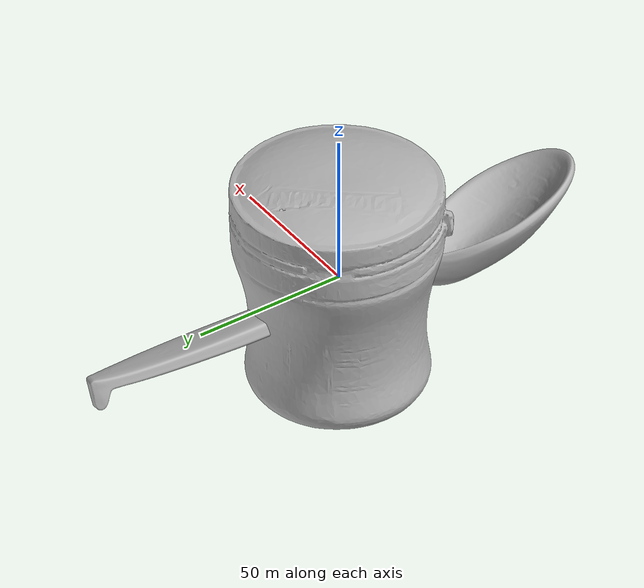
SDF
<sdf version="1.4">
 <world name="default">
  <light name="light1" type="point">
   <pose>0 0 1 0 0 0</pose>
   <diffuse>3 3 3 1</diffuse>
   <specular>3 3 3 1</specular>
  </light>
  <light name="light2" type="point">
   <pose>0 0.5 2 0 0 0</pose>
   <diffuse>1 1 1 1</diffuse>
   <specular>1 1 1 1</specular>
  </light>
  <light name="light3" type="point">
   <pose>0 0.5 2 0 0 0</pose>
   <diffuse>3 3 3 1</diffuse>
   <specular>3 3 3 1</specular>
  </light>
  <scene><ambient>0.7 0.7 0.7</ambient></scene>
  <model name="bottle1">
   <link name="link_bottle1">
    <collision name="default">
     <geometry>
      <mesh><uri>model://green_arrow/collision_meshes/collision.obj</uri><scale>1.0 1.0 1.0</scale></mesh>
     </geometry>
     <surface>
      <friction><ode><mu>0.5</mu><mu2>0.5</mu2></ode></friction>
      <contact><ode><max_vel>0</max_vel><min_depth>0.0001</min_depth><kp>1e8</kp></ode></contact>
     </surface>
    </collision>
    <visual name="default">
     <geometry>
      <mesh><uri>model://green_arrow/visual_meshes/visual.dae</uri><scale>1.0 1.0 1.0</scale></mesh>
     </geometry>
    </visual>
    <inertial>
     <mass>0.31872013211250305</mass>
     <pose>0.0005358478520065546 -0.0008270691032521427 0.002210969803854823 -0.06332250060756175 0.012985582117300467 0.6741007804522225</pose>
     <inertia>
      <ixx>0.00023120124</ixx>
      <iyy>0.000230851</iyy>
      <izz>0.0001492862</izz>
      <ixy>0</ixy>
      <ixz>0</ixz>
      <iyz>0</iyz>
     </inertia>
    </inertial>
   </link>
   <pose>-0.021411504596471786 0.3023797273635864 0.03896164521574974 0.04528488724772682 0.024256552680628415 -2.9375275718943157</pose>
  </model>
  <model name="bottle2">
   <link name="link_bottle2">
    <collision name="default">
     <geometry>
      <mesh><uri>model://pigeon/collision_meshes/collision.obj</uri><scale>1.0 1.0 1.0</scale></mesh>
     </geometry>
     <surface>
      <friction><ode><mu>0.5</mu><mu2>0.5</mu2></ode></friction>
      <contact><ode><max_vel>0</max_vel><min_depth>0.0001</min_depth><kp>1e8</kp></ode></contact>
     </surface>
    </collision>
    <visual name="default">
     <geometry><mesh><uri>model://pigeon/visual_meshes/visual.dae</uri><scale>1.0 1.0 1.0</scale></mesh></geometry>
    </visual>
    <inertial>
     <mass>0.5279804468154907</mass>
     <pose>-9.675472392700613e-05 -0.0001927677367348224 -0.01593620702624321 -0.011704407495178063 -0.0012978199512556723 -0.04198835484465517</pose>
     <inertia>
      <ixx>0.0013198232</ixx>
      <iyy>0.0014089285</iyy>
      <izz>0.000271492</izz>
      <ixy>0</ixy>
      <ixz>0</ixz>
      <iyz>0</iyz>
     </inertia>
    </inertial>
   </link>
   <pose>-0.06442016363143921 0.026909295469522476 0.09864485263824463 2.3814318162002528e-05 3.209315452502953e-06 2.562845028619898</pose>
  </model>
  <model name="silverware1">
   <link name="link_silverware1">
    <collision name="default">
     <geometry>
      <mesh><uri>model://doraemon_spoon/collision_meshes/collision.obj</uri><scale>1.0 1.0 1.0</scale></mesh>
     </geometry>
     <surface>
      <friction><ode><mu>0.5</mu><mu2>0.5</mu2></ode></friction>
      <contact><ode><max_vel>0</max_vel><min_depth>0.0001</min_depth><kp>1e8</kp></ode></contact>
     </surface>
    </collision>
    <visual name="default">
     <geometry>
      <mesh><uri>model://doraemon_spoon/visual_meshes/visual.dae</uri><scale>1.0 1.0 1.0</scale></mesh>
     </geometry>
    </visual>
    <inertial>
     <mass>0.014849366620182991</mass>
     <pose>-0.022165074944496155 -0.0006374582299031317 -0.0033325457479804754 -0.009146985479672626 0.07380416127774835 -0.014123827206003371</pose>
     <inertia>
      <ixx>1.1631438e-06</ixx>
      <iyy>3.3035012e-05</iyy>
      <izz>3.359665e-05</izz>
      <ixy>0</ixy>
      <ixz>0</ixz>
      <iyz>0</iyz>
     </inertia>
    </inertial>
   </link>
   <pose>0.2871767282485962 -0.204449862241745 0.014739416539669037 0.27917566008344663 -0.010337475105541657 1.5043008436629357</pose>
  </model>
  <model name="stationery1">
   <link name="link_stationery1">
    <collision name="default">
     <geometry>
      <mesh><uri>model://correction_fuid/collision_meshes/collision.obj</uri><scale>1.0 1.0 1.0</scale></mesh>
     </geometry>
     <surface>
      <friction><ode><mu>0.5</mu><mu2>0.5</mu2></ode></friction>
      <contact><ode><max_vel>0</max_vel><min_depth>0.0001</min_depth><kp>1e8</kp></ode></contact>
     </surface>
    </collision>
    <visual name="default">
     <geometry>
      <mesh><uri>model://correction_fuid/visual_meshes/visual.dae</uri><scale>1.0 1.0 1.0</scale></mesh>
     </geometry>
    </visual>
    <inertial>
     <mass>0.03422689810395241</mass>
     <pose>-0.00012557733862195164 -0.0009722901741042733 -0.001618212671019137 -0.010846609605282003 0.019488228935667613 -0.015992456651572746</pose>
     <inertia>
      <ixx>3.3149332e-05</ixx>
      <iyy>2.0062398e-06</iyy>
      <izz>3.4012115e-05</izz>
      <ixy>0</ixy>
      <ixz>0</ixz>
      <iyz>0</iyz>
     </inertia>
    </inertial>
   </link>
   <pose>0.2160613238811493 0.19325797259807587 0.009632828645408154 -0.0017271475994985205 -0.0561681369557578 -1.0541200260132746</pose>
  </model>
  <model name="bowl1">
   <link name="link_bowl1">
    <collision name="default">
     <geometry>
      <mesh><uri>model://doraemon_bowl/collision_meshes/collision.obj</uri><scale>1.0 1.0 1.0</scale></mesh>
     </geometry>
     <surface>
      <friction><ode><mu>0.5</mu><mu2>0.5</mu2></ode></friction>
      <contact><ode><max_vel>0</max_vel><min_depth>0.0001</min_depth><kp>1e8</kp></ode></contact>
     </surface>
    </collision>
    <visual name="default">
     <geometry>
      <mesh><uri>model://doraemon_bowl/visual_meshes/visual.dae</uri><scale>1.0 1.0 1.0</scale></mesh>
     </geometry>
    </visual>
    <inertial>
     <mass>0.10659078508615494</mass>
     <pose>-0.014629560522735119 0.00048571196384727955 -0.002086488762870431 -0.00509398386316645 -0.10568401530986889 -0.026426397124795446</pose>
     <inertia>
      <ixx>0.00014780516</ixx>
      <iyy>0.00019451023</iyy>
      <izz>0.00028617028</izz>
      <ixy>0</ixy>
      <ixz>0</ixz>
      <iyz>0</iyz>
     </inertia>
    </inertial>
   </link>
   <pose>0.13929912447929382 -0.10969918221235275 0.025905493646860123 0.008593573593958086 0.00634365979054229 -0.18907991935756902</pose>
  </model>
  <model name="cup1">
   <link name="link_cup1">
    <collision name="default">
     <geometry>
      <mesh><uri>model://doraemon_cup/collision_meshes/collision.obj</uri><scale>1.0 1.0 1.0</scale></mesh>
     </geometry>
     <surface>
      <friction><ode><mu>0.5</mu><mu2>0.5</mu2></ode></friction>
      <contact><ode><max_vel>0</max_vel><min_depth>0.0001</min_depth><kp>1e8</kp></ode></contact>
     </surface>
    </collision>
    <visual name="default">
     <geometry>
      <mesh><uri>model://doraemon_cup/visual_meshes/visual.dae</uri><scale>1.0 1.0 1.0</scale></mesh>
     </geometry>
    </visual>
    <inertial>
     <mass>0.07019124925136566</mass>
     <pose>-0.0003292977053206414 -0.0016633619088679552 -0.0022522560320794582 0.19498543632694942 -0.013693723781048914 -0.3205469926711019</pose>
     <inertia>
      <ixx>9.599299e-05</ixx>
      <iyy>9.2830705e-05</iyy>
      <izz>7.5864096e-05</izz>
      <ixy>0</ixy>
      <ixz>0</ixz>
      <iyz>0</iyz>
     </inertia>
    </inertial>
   </link>
   <pose>0.2562084197998047 -0.35604196786880493 0.04623253643512726 -0.01173918546130591 -0.008849970598105323 -2.733469164091431</pose>
  </model>
  <model name="plate1">
   <link name="link_plate1">
    <collision name="default">
     <geometry>
      <mesh><uri>model://hello_kitty_plate/collision_meshes/collision.obj</uri><scale>1.0 1.0 1.0</scale></mesh>
     </geometry>
     <surface>
      <friction><ode><mu>0.5</mu><mu2>0.5</mu2></ode></friction>
      <contact><ode><max_vel>0</max_vel><min_depth>0.0001</min_depth><kp>1e8</kp></ode></contact>
     </surface>
    </collision>
    <visual name="default">
     <geometry>
      <mesh><uri>model://hello_kitty_plate/visual_meshes/visual.dae</uri><scale>1.0 1.0 1.0</scale></mesh>
     </geometry>
    </visual>
    <inertial>
     <mass>0.03849242627620697</mass>
     <pose>0.007314295973628759 0.00028937432216480374 -0.0027947183698415756 -0.00010431794154861864 -0.007054443662422379 -0.014449020506613262</pose>
     <inertia>
      <ixx>7.4224925e-05</ixx>
      <iyy>0.00014008483</iyy>
      <izz>0.00021270475</izz>
      <ixy>0</ixy>
      <ixz>0</ixz>
      <iyz>0</iyz>
     </inertia>
    </inertial>
   </link>
   <pose>0.18135865032672882 0.014144045300781727 0.008291449397802353 0.0004660765214765326 0.00417331817542964 -0.2799024208813835</pose>
  </model>
  <model name="box4">
   <link name="link_box4">
    <collision name="default">
     <geometry>
      <mesh><uri>model://wooden_puzzle2/collision_meshes/collision.obj</uri><scale>1.0 1.0 1.0</scale></mesh>
     </geometry>
     <surface>
      <friction><ode><mu>0.5</mu><mu2>0.5</mu2></ode></friction>
      <contact><ode><max_vel>0</max_vel><min_depth>0.0001</min_depth><kp>1e8</kp></ode></contact>
     </surface>
    </collision>
    <visual name="default">
     <geometry>
      <mesh><uri>model://wooden_puzzle2/visual_meshes/visual.dae</uri><scale>1.0 1.0 1.0</scale></mesh>
     </geometry>
    </visual>
    <inertial>
     <mass>0.023858843371272087</mass>
     <pose>2.7402536943554878e-05 4.997663199901581e-05 6.587122334167361e-05 -0.1920347142936951 0.6112821219690274 -0.6338705729322873</pose>
     <inertia>
      <ixx>4.4351036e-06</ixx>
      <iyy>4.557319e-06</iyy>
      <izz>4.4924864e-06</izz>
      <ixy>0</ixy>
      <ixz>0</ixz>
      <iyz>0</iyz>
     </inertia>
    </inertial>
   </link>
   <pose>-0.08267539739608765 0.10092014074325562 0.01691773533821106 0.020848881611767647 0.0007208274355638306 -1.525126434555493</pose>
  </model>
  <physics type="ode">
   <max_contacts>50</max_contacts>
   <ode>
    <solver><type>quick</type><iters>75</iters></solver>
    <constraints>
     <contact_max_correcting_vel>0</contact_max_correcting_vel>
     <contact_surface_layer>0</contact_surface_layer>
    </constraints>
   </ode>
  </physics>
 </world>
</sdf>
